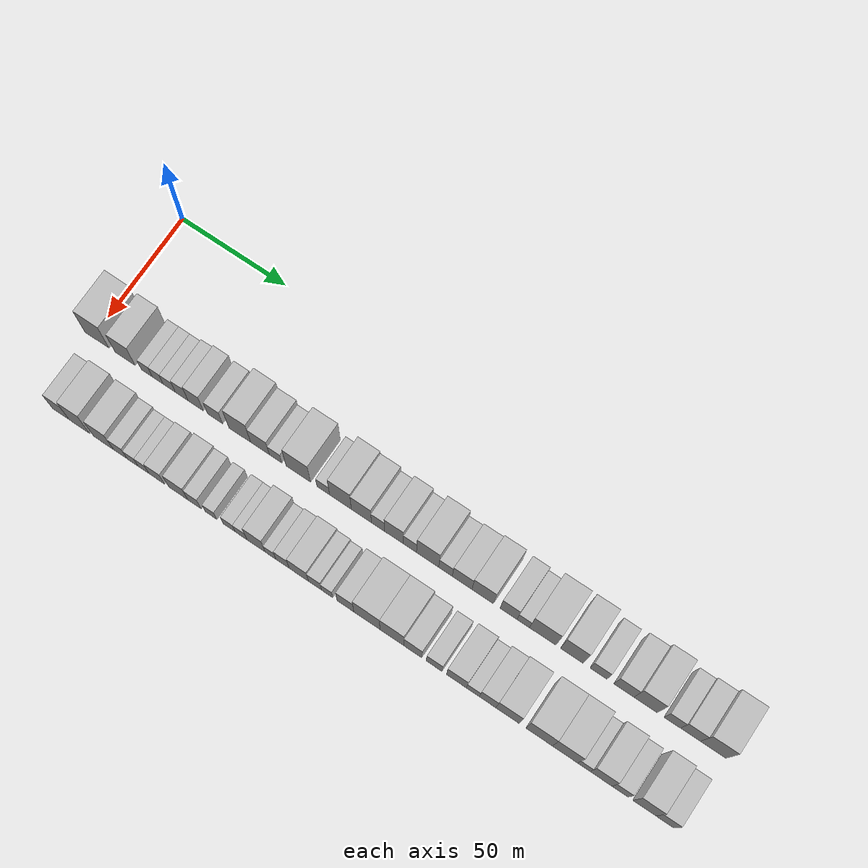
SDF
<sdf version="1.6">
 <world name="default">
  <model name="building_32">
   <static>1</static>
   <pose>50.0000 2.1094 0 0.000000 0.000000 0.000000</pose>
   <link name="link">
    <pose>0 0 12.00 0 0 0</pose>
    <collision name="collision"><geometry><box><size>20.0000 11.7132 24.0000</size></box></geometry></collision>
    <visual name="visual">
     <cast_shadows>0</cast_shadows>
     <geometry><box><size>20.0000 11.7132 24.0000</size></box></geometry>
     <material>
      <script>
       <uri>model://HANNAS_wall/materials/scripts</uri>
       <uri>model://HANNAS_wall/materials/textures</uri>
       <name>vrc/HANNAS_wall</name>
      </script>
     </material>
    </visual>
   </link>
  </model>
  <model name="building_33">
   <static>1</static>
   <pose>50.0000 15.8204 0 0.000000 0.000000 0.000000</pose>
   <link name="link">
    <pose>0 0 10.50 0 0 0</pose>
    <collision name="collision"><geometry><box><size>20.0000 9.7087 21.0000</size></box></geometry></collision>
    <visual name="visual">
     <cast_shadows>0</cast_shadows>
     <geometry><box><size>20.0000 9.7087 21.0000</size></box></geometry>
     <material>
      <script>
       <uri>model://HANNAS_wall/materials/scripts</uri>
       <uri>model://HANNAS_wall/materials/textures</uri>
       <name>vrc/HANNAS_wall</name>
      </script>
     </material>
    </visual>
   </link>
  </model>
  <model name="building_34">
   <static>1</static>
   <pose>50.0000 26.3142 0 0.000000 0.000000 0.000000</pose>
   <link name="link">
    <pose>0 0 6.00 0 0 0</pose>
    <collision name="collision"><geometry><box><size>20.0000 5.2790 12.0000</size></box></geometry></collision>
    <visual name="visual">
     <cast_shadows>0</cast_shadows>
     <geometry><box><size>20.0000 5.2790 12.0000</size></box></geometry>
     <material>
      <script>
       <uri>model://HANNAS_wall/materials/scripts</uri>
       <uri>model://HANNAS_wall/materials/textures</uri>
       <name>vrc/HANNAS_wall</name>
      </script>
     </material>
    </visual>
   </link>
  </model>
  <model name="building_35">
   <static>1</static>
   <pose>50.0000 31.6082 0 0.000000 0.000000 0.000000</pose>
   <link name="link">
    <pose>0 0 6.00 0 0 0</pose>
    <collision name="collision"><geometry><box><size>20.0000 5.3090 12.0000</size></box></geometry></collision>
    <visual name="visual">
     <cast_shadows>0</cast_shadows>
     <geometry><box><size>20.0000 5.3090 12.0000</size></box></geometry>
     <material>
      <script>
       <uri>model://HANNAS_wall/materials/scripts</uri>
       <uri>model://HANNAS_wall/materials/textures</uri>
       <name>vrc/HANNAS_wall</name>
      </script>
     </material>
    </visual>
   </link>
  </model>
  <model name="building_36">
   <static>1</static>
   <pose>50.0000 37.1352 0 0.000000 0.000000 0.000000</pose>
   <link name="link">
    <pose>0 0 6.00 0 0 0</pose>
    <collision name="collision"><geometry><box><size>20.0000 5.7449 12.0000</size></box></geometry></collision>
    <visual name="visual">
     <cast_shadows>0</cast_shadows>
     <geometry><box><size>20.0000 5.7449 12.0000</size></box></geometry>
     <material>
      <script>
       <uri>model://HANNAS_wall/materials/scripts</uri>
       <uri>model://HANNAS_wall/materials/textures</uri>
       <name>vrc/HANNAS_wall</name>
      </script>
     </material>
    </visual>
   </link>
  </model>
  <model name="building_37">
   <static>1</static>
   <pose>50.0000 43.0804 0 0.000000 0.000000 0.000000</pose>
   <link name="link">
    <pose>0 0 7.50 0 0 0</pose>
    <collision name="collision"><geometry><box><size>20.0000 6.1454 15.0000</size></box></geometry></collision>
    <visual name="visual">
     <cast_shadows>0</cast_shadows>
     <geometry><box><size>20.0000 6.1454 15.0000</size></box></geometry>
     <material>
      <script>
       <uri>model://HANNAS_wall/materials/scripts</uri>
       <uri>model://HANNAS_wall/materials/textures</uri>
       <name>vrc/HANNAS_wall</name>
      </script>
     </material>
    </visual>
   </link>
  </model>
  <model name="building_38">
   <static>1</static>
   <pose>50.0000 49.7688 0 0.000000 0.000000 0.000000</pose>
   <link name="link">
    <pose>0 0 9.00 0 0 0</pose>
    <collision name="collision"><geometry><box><size>20.0000 7.2315 18.0000</size></box></geometry></collision>
    <visual name="visual">
     <cast_shadows>0</cast_shadows>
     <geometry><box><size>20.0000 7.2315 18.0000</size></box></geometry>
     <material>
      <script>
       <uri>model://HANNAS_wall/materials/scripts</uri>
       <uri>model://HANNAS_wall/materials/textures</uri>
       <name>vrc/HANNAS_wall</name>
      </script>
     </material>
    </visual>
   </link>
  </model>
  <model name="building_39">
   <static>1</static>
   <pose>50.0000 58.9613 0 0.000000 0.000000 0.000000</pose>
   <link name="link">
    <pose>0 0 7.50 0 0 0</pose>
    <collision name="collision"><geometry><box><size>20.0000 7.1535 15.0000</size></box></geometry></collision>
    <visual name="visual">
     <cast_shadows>0</cast_shadows>
     <geometry><box><size>20.0000 7.1535 15.0000</size></box></geometry>
     <material>
      <script>
       <uri>model://HANNAS_wall/materials/scripts</uri>
       <uri>model://HANNAS_wall/materials/textures</uri>
       <name>vrc/HANNAS_wall</name>
      </script>
     </material>
    </visual>
   </link>
  </model>
  <model name="building_40">
   <static>1</static>
   <pose>50.0000 70.6889 0 0.000000 0.000000 0.000000</pose>
   <link name="link">
    <pose>0 0 12.00 0 0 0</pose>
    <collision name="collision"><geometry><box><size>20.0000 10.3017 24.0000</size></box></geometry></collision>
    <visual name="visual">
     <cast_shadows>0</cast_shadows>
     <geometry><box><size>20.0000 10.3017 24.0000</size></box></geometry>
     <material>
      <script>
       <uri>model://HANNAS_wall/materials/scripts</uri>
       <uri>model://HANNAS_wall/materials/textures</uri>
       <name>vrc/HANNAS_wall</name>
      </script>
     </material>
    </visual>
   </link>
  </model>
  <model name="building_41">
   <static>1</static>
   <pose>50.0000 80.2531 0 0.000000 0.000000 0.000000</pose>
   <link name="link">
    <pose>0 0 9.00 0 0 0</pose>
    <collision name="collision"><geometry><box><size>20.0000 8.8268 18.0000</size></box></geometry></collision>
    <visual name="visual">
     <cast_shadows>0</cast_shadows>
     <geometry><box><size>20.0000 8.8268 18.0000</size></box></geometry>
     <material>
      <script>
       <uri>model://HANNAS_wall/materials/scripts</uri>
       <uri>model://HANNAS_wall/materials/textures</uri>
       <name>vrc/HANNAS_wall</name>
      </script>
     </material>
    </visual>
   </link>
  </model>
  <model name="building_42">
   <static>1</static>
   <pose>50.0000 87.5807 0 0.000000 0.000000 0.000000</pose>
   <link name="link">
    <pose>0 0 6.00 0 0 0</pose>
    <collision name="collision"><geometry><box><size>20.0000 5.8285 12.0000</size></box></geometry></collision>
    <visual name="visual">
     <cast_shadows>0</cast_shadows>
     <geometry><box><size>20.0000 5.8285 12.0000</size></box></geometry>
     <material>
      <script>
       <uri>model://HANNAS_wall/materials/scripts</uri>
       <uri>model://HANNAS_wall/materials/textures</uri>
       <name>vrc/HANNAS_wall</name>
      </script>
     </material>
    </visual>
   </link>
  </model>
  <model name="building_43">
   <static>1</static>
   <pose>50.0000 98.2153 0 0.000000 0.000000 0.000000</pose>
   <link name="link">
    <pose>0 0 12.00 0 0 0</pose>
    <collision name="collision"><geometry><box><size>20.0000 11.4407 24.0000</size></box></geometry></collision>
    <visual name="visual">
     <cast_shadows>0</cast_shadows>
     <geometry><box><size>20.0000 11.4407 24.0000</size></box></geometry>
     <material>
      <script>
       <uri>model://HANNAS_wall/materials/scripts</uri>
       <uri>model://HANNAS_wall/materials/textures</uri>
       <name>vrc/HANNAS_wall</name>
      </script>
     </material>
    </visual>
   </link>
  </model>
  <model name="building_44">
   <static>1</static>
   <pose>50.0000 109.8829 0 0.000000 0.000000 0.000000</pose>
   <link name="link">
    <pose>0 0 6.00 0 0 0</pose>
    <collision name="collision"><geometry><box><size>20.0000 5.8946 12.0000</size></box></geometry></collision>
    <visual name="visual">
     <cast_shadows>0</cast_shadows>
     <geometry><box><size>20.0000 5.8946 12.0000</size></box></geometry>
     <material>
      <script>
       <uri>model://HANNAS_wall/materials/scripts</uri>
       <uri>model://HANNAS_wall/materials/textures</uri>
       <name>vrc/HANNAS_wall</name>
      </script>
     </material>
    </visual>
   </link>
  </model>
  <model name="building_45">
   <static>1</static>
   <pose>50.0000 117.8604 0 0.000000 0.000000 0.000000</pose>
   <link name="link">
    <pose>0 0 12.00 0 0 0</pose>
    <collision name="collision"><geometry><box><size>20.0000 10.0603 24.0000</size></box></geometry></collision>
    <visual name="visual">
     <cast_shadows>0</cast_shadows>
     <geometry><box><size>20.0000 10.0603 24.0000</size></box></geometry>
     <material>
      <script>
       <uri>model://HANNAS_wall/materials/scripts</uri>
       <uri>model://HANNAS_wall/materials/textures</uri>
       <name>vrc/HANNAS_wall</name>
      </script>
     </material>
    </visual>
   </link>
  </model>
  <model name="building_46">
   <static>1</static>
   <pose>50.0000 127.4935 0 0.000000 0.000000 0.000000</pose>
   <link name="link">
    <pose>0 0 10.50 0 0 0</pose>
    <collision name="collision"><geometry><box><size>20.0000 9.2059 21.0000</size></box></geometry></collision>
    <visual name="visual">
     <cast_shadows>0</cast_shadows>
     <geometry><box><size>20.0000 9.2059 21.0000</size></box></geometry>
     <material>
      <script>
       <uri>model://HANNAS_wall/materials/scripts</uri>
       <uri>model://HANNAS_wall/materials/textures</uri>
       <name>vrc/HANNAS_wall</name>
      </script>
     </material>
    </visual>
   </link>
  </model>
  <model name="building_47">
   <static>1</static>
   <pose>50.0000 135.1007 0 0.000000 0.000000 0.000000</pose>
   <link name="link">
    <pose>0 0 7.50 0 0 0</pose>
    <collision name="collision"><geometry><box><size>20.0000 6.0083 15.0000</size></box></geometry></collision>
    <visual name="visual">
     <cast_shadows>0</cast_shadows>
     <geometry><box><size>20.0000 6.0083 15.0000</size></box></geometry>
     <material>
      <script>
       <uri>model://HANNAS_wall/materials/scripts</uri>
       <uri>model://HANNAS_wall/materials/textures</uri>
       <name>vrc/HANNAS_wall</name>
      </script>
     </material>
    </visual>
   </link>
  </model>
  <model name="building_48">
   <static>1</static>
   <pose>50.0000 142.4231 0 0.000000 0.000000 0.000000</pose>
   <link name="link">
    <pose>0 0 10.50 0 0 0</pose>
    <collision name="collision"><geometry><box><size>20.0000 8.6366 21.0000</size></box></geometry></collision>
    <visual name="visual">
     <cast_shadows>0</cast_shadows>
     <geometry><box><size>20.0000 8.6366 21.0000</size></box></geometry>
     <material>
      <script>
       <uri>model://HANNAS_wall/materials/scripts</uri>
       <uri>model://HANNAS_wall/materials/textures</uri>
       <name>vrc/HANNAS_wall</name>
      </script>
     </material>
    </visual>
   </link>
  </model>
  <model name="building_49">
   <static>1</static>
   <pose>50.0000 149.7621 0 0.000000 0.000000 0.000000</pose>
   <link name="link">
    <pose>0 0 7.50 0 0 0</pose>
    <collision name="collision"><geometry><box><size>20.0000 6.0415 15.0000</size></box></geometry></collision>
    <visual name="visual">
     <cast_shadows>0</cast_shadows>
     <geometry><box><size>20.0000 6.0415 15.0000</size></box></geometry>
     <material>
      <script>
       <uri>model://HANNAS_wall/materials/scripts</uri>
       <uri>model://HANNAS_wall/materials/textures</uri>
       <name>vrc/HANNAS_wall</name>
      </script>
     </material>
    </visual>
   </link>
  </model>
  <model name="building_50">
   <static>1</static>
   <pose>50.0000 157.8326 0 0.000000 0.000000 0.000000</pose>
   <link name="link">
    <pose>0 0 12.00 0 0 0</pose>
    <collision name="collision"><geometry><box><size>20.0000 10.0995 24.0000</size></box></geometry></collision>
    <visual name="visual">
     <cast_shadows>0</cast_shadows>
     <geometry><box><size>20.0000 10.0995 24.0000</size></box></geometry>
     <material>
      <script>
       <uri>model://HANNAS_wall/materials/scripts</uri>
       <uri>model://HANNAS_wall/materials/textures</uri>
       <name>vrc/HANNAS_wall</name>
      </script>
     </material>
    </visual>
   </link>
  </model>
  <model name="building_51">
   <static>1</static>
   <pose>50.0000 165.9687 0 0.000000 0.000000 0.000000</pose>
   <link name="link">
    <pose>0 0 7.50 0 0 0</pose>
    <collision name="collision"><geometry><box><size>20.0000 6.1727 15.0000</size></box></geometry></collision>
    <visual name="visual">
     <cast_shadows>0</cast_shadows>
     <geometry><box><size>20.0000 6.1727 15.0000</size></box></geometry>
     <material>
      <script>
       <uri>model://HANNAS_wall/materials/scripts</uri>
       <uri>model://HANNAS_wall/materials/textures</uri>
       <name>vrc/HANNAS_wall</name>
      </script>
     </material>
    </visual>
   </link>
  </model>
  <model name="building_52">
   <static>1</static>
   <pose>50.0000 173.4965 0 0.000000 0.000000 0.000000</pose>
   <link name="link">
    <pose>0 0 9.00 0 0 0</pose>
    <collision name="collision"><geometry><box><size>20.0000 8.8830 18.0000</size></box></geometry></collision>
    <visual name="visual">
     <cast_shadows>0</cast_shadows>
     <geometry><box><size>20.0000 8.8830 18.0000</size></box></geometry>
     <material>
      <script>
       <uri>model://HANNAS_wall/materials/scripts</uri>
       <uri>model://HANNAS_wall/materials/textures</uri>
       <name>vrc/HANNAS_wall</name>
      </script>
     </material>
    </visual>
   </link>
  </model>
  <model name="building_53">
   <static>1</static>
   <pose>50.0000 182.7854 0 0.000000 0.000000 0.000000</pose>
   <link name="link">
    <pose>0 0 10.50 0 0 0</pose>
    <collision name="collision"><geometry><box><size>20.0000 9.6948 21.0000</size></box></geometry></collision>
    <visual name="visual">
     <cast_shadows>0</cast_shadows>
     <geometry><box><size>20.0000 9.6948 21.0000</size></box></geometry>
     <material>
      <script>
       <uri>model://HANNAS_wall/materials/scripts</uri>
       <uri>model://HANNAS_wall/materials/textures</uri>
       <name>vrc/HANNAS_wall</name>
      </script>
     </material>
    </visual>
   </link>
  </model>
  <model name="building_54">
   <static>1</static>
   <pose>50.0000 194.4416 0 0.000000 0.000000 0.000000</pose>
   <link name="link">
    <pose>0 0 9.00 0 0 0</pose>
    <collision name="collision"><geometry><box><size>20.0000 7.6175 18.0000</size></box></geometry></collision>
    <visual name="visual">
     <cast_shadows>0</cast_shadows>
     <geometry><box><size>20.0000 7.6175 18.0000</size></box></geometry>
     <material>
      <script>
       <uri>model://HANNAS_wall/materials/scripts</uri>
       <uri>model://HANNAS_wall/materials/textures</uri>
       <name>vrc/HANNAS_wall</name>
      </script>
     </material>
    </visual>
   </link>
  </model>
  <model name="building_55">
   <static>1</static>
   <pose>50.0000 201.0406 0 0.000000 0.000000 0.000000</pose>
   <link name="link">
    <pose>0 0 6.00 0 0 0</pose>
    <collision name="collision"><geometry><box><size>20.0000 5.5805 12.0000</size></box></geometry></collision>
    <visual name="visual">
     <cast_shadows>0</cast_shadows>
     <geometry><box><size>20.0000 5.5805 12.0000</size></box></geometry>
     <material>
      <script>
       <uri>model://HANNAS_wall/materials/scripts</uri>
       <uri>model://HANNAS_wall/materials/textures</uri>
       <name>vrc/HANNAS_wall</name>
      </script>
     </material>
    </visual>
   </link>
  </model>
  <model name="building_56">
   <static>1</static>
   <pose>50.0000 209.7148 0 0.000000 0.000000 0.000000</pose>
   <link name="link">
    <pose>0 0 12.00 0 0 0</pose>
    <collision name="collision"><geometry><box><size>20.0000 11.7679 24.0000</size></box></geometry></collision>
    <visual name="visual">
     <cast_shadows>0</cast_shadows>
     <geometry><box><size>20.0000 11.7679 24.0000</size></box></geometry>
     <material>
      <script>
       <uri>model://HANNAS_wall/materials/scripts</uri>
       <uri>model://HANNAS_wall/materials/textures</uri>
       <name>vrc/HANNAS_wall</name>
      </script>
     </material>
    </visual>
   </link>
  </model>
  <model name="building_57">
   <static>1</static>
   <pose>50.0000 222.6234 0 0.000000 0.000000 0.000000</pose>
   <link name="link">
    <pose>0 0 12.00 0 0 0</pose>
    <collision name="collision"><geometry><box><size>20.0000 10.0494 24.0000</size></box></geometry></collision>
    <visual name="visual">
     <cast_shadows>0</cast_shadows>
     <geometry><box><size>20.0000 10.0494 24.0000</size></box></geometry>
     <material>
      <script>
       <uri>model://HANNAS_wall/materials/scripts</uri>
       <uri>model://HANNAS_wall/materials/textures</uri>
       <name>vrc/HANNAS_wall</name>
      </script>
     </material>
    </visual>
   </link>
  </model>
  <model name="building_58">
   <static>1</static>
   <pose>50.0000 234.3908 0 0.000000 0.000000 0.000000</pose>
   <link name="link">
    <pose>0 0 7.50 0 0 0</pose>
    <collision name="collision"><geometry><box><size>20.0000 7.4855 15.0000</size></box></geometry></collision>
    <visual name="visual">
     <cast_shadows>0</cast_shadows>
     <geometry><box><size>20.0000 7.4855 15.0000</size></box></geometry>
     <material>
      <script>
       <uri>model://HANNAS_wall/materials/scripts</uri>
       <uri>model://HANNAS_wall/materials/textures</uri>
       <name>vrc/HANNAS_wall</name>
      </script>
     </material>
    </visual>
   </link>
  </model>
  <model name="building_59">
   <static>1</static>
   <pose>50.0000 245.5491 0 0.000000 0.000000 0.000000</pose>
   <link name="link">
    <pose>0 0 9.00 0 0 0</pose>
    <collision name="collision"><geometry><box><size>20.0000 8.8310 18.0000</size></box></geometry></collision>
    <visual name="visual">
     <cast_shadows>0</cast_shadows>
     <geometry><box><size>20.0000 8.8310 18.0000</size></box></geometry>
     <material>
      <script>
       <uri>model://HANNAS_wall/materials/scripts</uri>
       <uri>model://HANNAS_wall/materials/textures</uri>
       <name>vrc/HANNAS_wall</name>
      </script>
     </material>
    </visual>
   </link>
  </model>
  <model name="building_60">
   <static>1</static>
   <pose>50.0000 255.0190 0 0.000000 0.000000 0.000000</pose>
   <link name="link">
    <pose>0 0 12.00 0 0 0</pose>
    <collision name="collision"><geometry><box><size>20.0000 10.1087 24.0000</size></box></geometry></collision>
    <visual name="visual">
     <cast_shadows>0</cast_shadows>
     <geometry><box><size>20.0000 10.1087 24.0000</size></box></geometry>
     <material>
      <script>
       <uri>model://HANNAS_wall/materials/scripts</uri>
       <uri>model://HANNAS_wall/materials/textures</uri>
       <name>vrc/HANNAS_wall</name>
      </script>
     </material>
    </visual>
   </link>
  </model>
  <model name="building_61">
   <static>1</static>
   <pose>50.0000 266.5983 0 0.000000 0.000000 0.000000</pose>
   <link name="link">
    <pose>0 0 7.50 0 0 0</pose>
    <collision name="collision"><geometry><box><size>20.0000 7.0500 15.0000</size></box></geometry></collision>
    <visual name="visual">
     <cast_shadows>0</cast_shadows>
     <geometry><box><size>20.0000 7.0500 15.0000</size></box></geometry>
     <material>
      <script>
       <uri>model://HANNAS_wall/materials/scripts</uri>
       <uri>model://HANNAS_wall/materials/textures</uri>
       <name>vrc/HANNAS_wall</name>
      </script>
     </material>
    </visual>
   </link>
  </model>
  <model name="building_62">
   <static>1</static>
   <pose>50.0000 274.4224 0 0.000000 0.000000 0.000000</pose>
   <link name="link">
    <pose>0 0 9.00 0 0 0</pose>
    <collision name="collision"><geometry><box><size>20.0000 8.5982 18.0000</size></box></geometry></collision>
    <visual name="visual">
     <cast_shadows>0</cast_shadows>
     <geometry><box><size>20.0000 8.5982 18.0000</size></box></geometry>
     <material>
      <script>
       <uri>model://HANNAS_wall/materials/scripts</uri>
       <uri>model://HANNAS_wall/materials/textures</uri>
       <name>vrc/HANNAS_wall</name>
      </script>
     </material>
    </visual>
   </link>
  </model>
  <model name="building_63">
   <static>1</static>
   <pose>50.0000 284.2495 0 0.000000 0.000000 0.000000</pose>
   <link name="link">
    <pose>0 0 12.00 0 0 0</pose>
    <collision name="collision"><geometry><box><size>20.0000 11.0559 24.0000</size></box></geometry></collision>
    <visual name="visual">
     <cast_shadows>0</cast_shadows>
     <geometry><box><size>20.0000 11.0559 24.0000</size></box></geometry>
     <material>
      <script>
       <uri>model://HANNAS_wall/materials/scripts</uri>
       <uri>model://HANNAS_wall/materials/textures</uri>
       <name>vrc/HANNAS_wall</name>
      </script>
     </material>
    </visual>
   </link>
  </model>
  <model name="building_98">
   <static>1</static>
   <pose>82.0000 8.5804 0 0.000000 0.000000 0.000000</pose>
   <link name="link">
    <pose>0 0 9.00 0 0 0</pose>
    <collision name="collision"><geometry><box><size>20.0000 8.1538 18.0000</size></box></geometry></collision>
    <visual name="visual">
     <cast_shadows>0</cast_shadows>
     <geometry><box><size>20.0000 8.1538 18.0000</size></box></geometry>
     <material>
      <script>
       <uri>model://HANNAS_wall/materials/scripts</uri>
       <uri>model://HANNAS_wall/materials/textures</uri>
       <name>vrc/HANNAS_wall</name>
      </script>
     </material>
    </visual>
   </link>
  </model>
  <model name="building_99">
   <static>1</static>
   <pose>82.0000 17.5624 0 0.000000 0.000000 0.000000</pose>
   <link name="link">
    <pose>0 0 12.00 0 0 0</pose>
    <collision name="collision"><geometry><box><size>20.0000 9.8102 24.0000</size></box></geometry></collision>
    <visual name="visual">
     <cast_shadows>0</cast_shadows>
     <geometry><box><size>20.0000 9.8102 24.0000</size></box></geometry>
     <material>
      <script>
       <uri>model://HANNAS_wall/materials/scripts</uri>
       <uri>model://HANNAS_wall/materials/textures</uri>
       <name>vrc/HANNAS_wall</name>
      </script>
     </material>
    </visual>
   </link>
  </model>
  <model name="building_100">
   <static>1</static>
   <pose>82.0000 29.2115 0 0.000000 0.000000 0.000000</pose>
   <link name="link">
    <pose>0 0 10.50 0 0 0</pose>
    <collision name="collision"><geometry><box><size>20.0000 9.4880 21.0000</size></box></geometry></collision>
    <visual name="visual">
     <cast_shadows>0</cast_shadows>
     <geometry><box><size>20.0000 9.4880 21.0000</size></box></geometry>
     <material>
      <script>
       <uri>model://HANNAS_wall/materials/scripts</uri>
       <uri>model://HANNAS_wall/materials/textures</uri>
       <name>vrc/HANNAS_wall</name>
      </script>
     </material>
    </visual>
   </link>
  </model>
  <model name="building_101">
   <static>1</static>
   <pose>82.0000 37.2784 0 0.000000 0.000000 0.000000</pose>
   <link name="link">
    <pose>0 0 7.50 0 0 0</pose>
    <collision name="collision"><geometry><box><size>20.0000 6.6459 15.0000</size></box></geometry></collision>
    <visual name="visual">
     <cast_shadows>0</cast_shadows>
     <geometry><box><size>20.0000 6.6459 15.0000</size></box></geometry>
     <material>
      <script>
       <uri>model://HANNAS_wall/materials/scripts</uri>
       <uri>model://HANNAS_wall/materials/textures</uri>
       <name>vrc/HANNAS_wall</name>
      </script>
     </material>
    </visual>
   </link>
  </model>
  <model name="building_102">
   <static>1</static>
   <pose>82.0000 43.2062 0 0.000000 0.000000 0.000000</pose>
   <link name="link">
    <pose>0 0 6.00 0 0 0</pose>
    <collision name="collision"><geometry><box><size>20.0000 5.2098 12.0000</size></box></geometry></collision>
    <visual name="visual">
     <cast_shadows>0</cast_shadows>
     <geometry><box><size>20.0000 5.2098 12.0000</size></box></geometry>
     <material>
      <script>
       <uri>model://HANNAS_wall/materials/scripts</uri>
       <uri>model://HANNAS_wall/materials/textures</uri>
       <name>vrc/HANNAS_wall</name>
      </script>
     </material>
    </visual>
   </link>
  </model>
  <model name="building_103">
   <static>1</static>
   <pose>82.0000 48.4002 0 0.000000 0.000000 0.000000</pose>
   <link name="link">
    <pose>0 0 6.00 0 0 0</pose>
    <collision name="collision"><geometry><box><size>20.0000 5.1782 12.0000</size></box></geometry></collision>
    <visual name="visual">
     <cast_shadows>0</cast_shadows>
     <geometry><box><size>20.0000 5.1782 12.0000</size></box></geometry>
     <material>
      <script>
       <uri>model://HANNAS_wall/materials/scripts</uri>
       <uri>model://HANNAS_wall/materials/textures</uri>
       <name>vrc/HANNAS_wall</name>
      </script>
     </material>
    </visual>
   </link>
  </model>
  <model name="building_104">
   <static>1</static>
   <pose>82.0000 54.6306 0 0.000000 0.000000 0.000000</pose>
   <link name="link">
    <pose>0 0 7.50 0 0 0</pose>
    <collision name="collision"><geometry><box><size>20.0000 7.2825 15.0000</size></box></geometry></collision>
    <visual name="visual">
     <cast_shadows>0</cast_shadows>
     <geometry><box><size>20.0000 7.2825 15.0000</size></box></geometry>
     <material>
      <script>
       <uri>model://HANNAS_wall/materials/scripts</uri>
       <uri>model://HANNAS_wall/materials/textures</uri>
       <name>vrc/HANNAS_wall</name>
      </script>
     </material>
    </visual>
   </link>
  </model>
  <model name="building_105">
   <static>1</static>
   <pose>82.0000 64.7690 0 0.000000 0.000000 0.000000</pose>
   <link name="link">
    <pose>0 0 9.00 0 0 0</pose>
    <collision name="collision"><geometry><box><size>20.0000 8.9944 18.0000</size></box></geometry></collision>
    <visual name="visual">
     <cast_shadows>0</cast_shadows>
     <geometry><box><size>20.0000 8.9944 18.0000</size></box></geometry>
     <material>
      <script>
       <uri>model://HANNAS_wall/materials/scripts</uri>
       <uri>model://HANNAS_wall/materials/textures</uri>
       <name>vrc/HANNAS_wall</name>
      </script>
     </material>
    </visual>
   </link>
  </model>
  <model name="building_106">
   <static>1</static>
   <pose>82.0000 72.3655 0 0.000000 0.000000 0.000000</pose>
   <link name="link">
    <pose>0 0 7.50 0 0 0</pose>
    <collision name="collision"><geometry><box><size>20.0000 6.1985 15.0000</size></box></geometry></collision>
    <visual name="visual">
     <cast_shadows>0</cast_shadows>
     <geometry><box><size>20.0000 6.1985 15.0000</size></box></geometry>
     <material>
      <script>
       <uri>model://HANNAS_wall/materials/scripts</uri>
       <uri>model://HANNAS_wall/materials/textures</uri>
       <name>vrc/HANNAS_wall</name>
      </script>
     </material>
    </visual>
   </link>
  </model>
  <model name="building_107">
   <static>1</static>
   <pose>82.0000 80.1592 0 0.000000 0.000000 0.000000</pose>
   <link name="link">
    <pose>0 0 6.00 0 0 0</pose>
    <collision name="collision"><geometry><box><size>20.0000 5.3889 12.0000</size></box></geometry></collision>
    <visual name="visual">
     <cast_shadows>0</cast_shadows>
     <geometry><box><size>20.0000 5.3889 12.0000</size></box></geometry>
     <material>
      <script>
       <uri>model://HANNAS_wall/materials/scripts</uri>
       <uri>model://HANNAS_wall/materials/textures</uri>
       <name>vrc/HANNAS_wall</name>
      </script>
     </material>
    </visual>
   </link>
  </model>
  <model name="building_108">
   <static>1</static>
   <pose>82.0000 88.6038 0 0.000000 0.000000 0.000000</pose>
   <link name="link">
    <pose>0 0 6.00 0 0 0</pose>
    <collision name="collision"><geometry><box><size>20.0000 5.5002 12.0000</size></box></geometry></collision>
    <visual name="visual">
     <cast_shadows>0</cast_shadows>
     <geometry><box><size>20.0000 5.5002 12.0000</size></box></geometry>
     <material>
      <script>
       <uri>model://HANNAS_wall/materials/scripts</uri>
       <uri>model://HANNAS_wall/materials/textures</uri>
       <name>vrc/HANNAS_wall</name>
      </script>
     </material>
    </visual>
   </link>
  </model>
  <model name="building_109">
   <static>1</static>
   <pose>82.0000 94.1390 0 0.000000 0.000000 0.000000</pose>
   <link name="link">
    <pose>0 0 6.00 0 0 0</pose>
    <collision name="collision"><geometry><box><size>20.0000 5.5704 12.0000</size></box></geometry></collision>
    <visual name="visual">
     <cast_shadows>0</cast_shadows>
     <geometry><box><size>20.0000 5.5704 12.0000</size></box></geometry>
     <material>
      <script>
       <uri>model://HANNAS_wall/materials/scripts</uri>
       <uri>model://HANNAS_wall/materials/textures</uri>
       <name>vrc/HANNAS_wall</name>
      </script>
     </material>
    </visual>
   </link>
  </model>
  <model name="building_110">
   <static>1</static>
   <pose>82.0000 101.1667 0 0.000000 0.000000 0.000000</pose>
   <link name="link">
    <pose>0 0 10.50 0 0 0</pose>
    <collision name="collision"><geometry><box><size>20.0000 8.4850 21.0000</size></box></geometry></collision>
    <visual name="visual">
     <cast_shadows>0</cast_shadows>
     <geometry><box><size>20.0000 8.4850 21.0000</size></box></geometry>
     <material>
      <script>
       <uri>model://HANNAS_wall/materials/scripts</uri>
       <uri>model://HANNAS_wall/materials/textures</uri>
       <name>vrc/HANNAS_wall</name>
      </script>
     </material>
    </visual>
   </link>
  </model>
  <model name="building_111">
   <static>1</static>
   <pose>82.0000 107.8712 0 0.000000 0.000000 0.000000</pose>
   <link name="link">
    <pose>0 0 6.00 0 0 0</pose>
    <collision name="collision"><geometry><box><size>20.0000 4.9240 12.0000</size></box></geometry></collision>
    <visual name="visual">
     <cast_shadows>0</cast_shadows>
     <geometry><box><size>20.0000 4.9240 12.0000</size></box></geometry>
     <material>
      <script>
       <uri>model://HANNAS_wall/materials/scripts</uri>
       <uri>model://HANNAS_wall/materials/textures</uri>
       <name>vrc/HANNAS_wall</name>
      </script>
     </material>
    </visual>
   </link>
  </model>
  <model name="building_112">
   <static>1</static>
   <pose>82.0000 113.3877 0 0.000000 0.000000 0.000000</pose>
   <link name="link">
    <pose>0 0 7.50 0 0 0</pose>
    <collision name="collision"><geometry><box><size>20.0000 6.1090 15.0000</size></box></geometry></collision>
    <visual name="visual">
     <cast_shadows>0</cast_shadows>
     <geometry><box><size>20.0000 6.1090 15.0000</size></box></geometry>
     <material>
      <script>
       <uri>model://HANNAS_wall/materials/scripts</uri>
       <uri>model://HANNAS_wall/materials/textures</uri>
       <name>vrc/HANNAS_wall</name>
      </script>
     </material>
    </visual>
   </link>
  </model>
  <model name="building_113">
   <static>1</static>
   <pose>82.0000 120.8658 0 0.000000 0.000000 0.000000</pose>
   <link name="link">
    <pose>0 0 9.00 0 0 0</pose>
    <collision name="collision"><geometry><box><size>20.0000 8.8472 18.0000</size></box></geometry></collision>
    <visual name="visual">
     <cast_shadows>0</cast_shadows>
     <geometry><box><size>20.0000 8.8472 18.0000</size></box></geometry>
     <material>
      <script>
       <uri>model://HANNAS_wall/materials/scripts</uri>
       <uri>model://HANNAS_wall/materials/textures</uri>
       <name>vrc/HANNAS_wall</name>
      </script>
     </material>
    </visual>
   </link>
  </model>
  <model name="building_114">
   <static>1</static>
   <pose>82.0000 128.2970 0 0.000000 0.000000 0.000000</pose>
   <link name="link">
    <pose>0 0 7.50 0 0 0</pose>
    <collision name="collision"><geometry><box><size>20.0000 6.0151 15.0000</size></box></geometry></collision>
    <visual name="visual">
     <cast_shadows>0</cast_shadows>
     <geometry><box><size>20.0000 6.0151 15.0000</size></box></geometry>
     <material>
      <script>
       <uri>model://HANNAS_wall/materials/scripts</uri>
       <uri>model://HANNAS_wall/materials/textures</uri>
       <name>vrc/HANNAS_wall</name>
      </script>
     </material>
    </visual>
   </link>
  </model>
  <model name="building_115">
   <static>1</static>
   <pose>82.0000 133.8559 0 0.000000 0.000000 0.000000</pose>
   <link name="link">
    <pose>0 0 6.00 0 0 0</pose>
    <collision name="collision"><geometry><box><size>20.0000 5.1026 12.0000</size></box></geometry></collision>
    <visual name="visual">
     <cast_shadows>0</cast_shadows>
     <geometry><box><size>20.0000 5.1026 12.0000</size></box></geometry>
     <material>
      <script>
       <uri>model://HANNAS_wall/materials/scripts</uri>
       <uri>model://HANNAS_wall/materials/textures</uri>
       <name>vrc/HANNAS_wall</name>
      </script>
     </material>
    </visual>
   </link>
  </model>
  <model name="building_116">
   <static>1</static>
   <pose>82.0000 142.2069 0 0.000000 0.000000 0.000000</pose>
   <link name="link">
    <pose>0 0 9.00 0 0 0</pose>
    <collision name="collision"><geometry><box><size>20.0000 7.5994 18.0000</size></box></geometry></collision>
    <visual name="visual">
     <cast_shadows>0</cast_shadows>
     <geometry><box><size>20.0000 7.5994 18.0000</size></box></geometry>
     <material>
      <script>
       <uri>model://HANNAS_wall/materials/scripts</uri>
       <uri>model://HANNAS_wall/materials/textures</uri>
       <name>vrc/HANNAS_wall</name>
      </script>
     </material>
    </visual>
   </link>
  </model>
  <model name="building_117">
   <static>1</static>
   <pose>82.0000 151.9448 0 0.000000 0.000000 0.000000</pose>
   <link name="link">
    <pose>0 0 12.00 0 0 0</pose>
    <collision name="collision"><geometry><box><size>20.0000 11.8764 24.0000</size></box></geometry></collision>
    <visual name="visual">
     <cast_shadows>0</cast_shadows>
     <geometry><box><size>20.0000 11.8764 24.0000</size></box></geometry>
     <material>
      <script>
       <uri>model://HANNAS_wall/materials/scripts</uri>
       <uri>model://HANNAS_wall/materials/textures</uri>
       <name>vrc/HANNAS_wall</name>
      </script>
     </material>
    </visual>
   </link>
  </model>
  <model name="building_118">
   <static>1</static>
   <pose>82.0000 163.2398 0 0.000000 0.000000 0.000000</pose>
   <link name="link">
    <pose>0 0 12.00 0 0 0</pose>
    <collision name="collision"><geometry><box><size>20.0000 10.7136 24.0000</size></box></geometry></collision>
    <visual name="visual">
     <cast_shadows>0</cast_shadows>
     <geometry><box><size>20.0000 10.7136 24.0000</size></box></geometry>
     <material>
      <script>
       <uri>model://HANNAS_wall/materials/scripts</uri>
       <uri>model://HANNAS_wall/materials/textures</uri>
       <name>vrc/HANNAS_wall</name>
      </script>
     </material>
    </visual>
   </link>
  </model>
  <model name="building_119">
   <static>1</static>
   <pose>82.0000 172.6630 0 0.000000 0.000000 0.000000</pose>
   <link name="link">
    <pose>0 0 9.00 0 0 0</pose>
    <collision name="collision"><geometry><box><size>20.0000 8.1327 18.0000</size></box></geometry></collision>
    <visual name="visual">
     <cast_shadows>0</cast_shadows>
     <geometry><box><size>20.0000 8.1327 18.0000</size></box></geometry>
     <material>
      <script>
       <uri>model://HANNAS_wall/materials/scripts</uri>
       <uri>model://HANNAS_wall/materials/textures</uri>
       <name>vrc/HANNAS_wall</name>
      </script>
     </material>
    </visual>
   </link>
  </model>
  <model name="building_120">
   <static>1</static>
   <pose>82.0000 182.2499 0 0.000000 0.000000 0.000000</pose>
   <link name="link">
    <pose>0 0 7.50 0 0 0</pose>
    <collision name="collision"><geometry><box><size>20.0000 7.0410 15.0000</size></box></geometry></collision>
    <visual name="visual">
     <cast_shadows>0</cast_shadows>
     <geometry><box><size>20.0000 7.0410 15.0000</size></box></geometry>
     <material>
      <script>
       <uri>model://HANNAS_wall/materials/scripts</uri>
       <uri>model://HANNAS_wall/materials/textures</uri>
       <name>vrc/HANNAS_wall</name>
      </script>
     </material>
    </visual>
   </link>
  </model>
  <model name="building_121">
   <static>1</static>
   <pose>82.0000 192.2109 0 0.000000 0.000000 0.000000</pose>
   <link name="link">
    <pose>0 0 9.00 0 0 0</pose>
    <collision name="collision"><geometry><box><size>20.0000 8.8810 18.0000</size></box></geometry></collision>
    <visual name="visual">
     <cast_shadows>0</cast_shadows>
     <geometry><box><size>20.0000 8.8810 18.0000</size></box></geometry>
     <material>
      <script>
       <uri>model://HANNAS_wall/materials/scripts</uri>
       <uri>model://HANNAS_wall/materials/textures</uri>
       <name>vrc/HANNAS_wall</name>
      </script>
     </material>
    </visual>
   </link>
  </model>
  <model name="building_122">
   <static>1</static>
   <pose>82.0000 199.5385 0 0.000000 0.000000 0.000000</pose>
   <link name="link">
    <pose>0 0 6.00 0 0 0</pose>
    <collision name="collision"><geometry><box><size>20.0000 5.7742 12.0000</size></box></geometry></collision>
    <visual name="visual">
     <cast_shadows>0</cast_shadows>
     <geometry><box><size>20.0000 5.7742 12.0000</size></box></geometry>
     <material>
      <script>
       <uri>model://HANNAS_wall/materials/scripts</uri>
       <uri>model://HANNAS_wall/materials/textures</uri>
       <name>vrc/HANNAS_wall</name>
      </script>
     </material>
    </visual>
   </link>
  </model>
  <model name="building_123">
   <static>1</static>
   <pose>82.0000 206.1037 0 0.000000 0.000000 0.000000</pose>
   <link name="link">
    <pose>0 0 9.00 0 0 0</pose>
    <collision name="collision"><geometry><box><size>20.0000 7.3562 18.0000</size></box></geometry></collision>
    <visual name="visual">
     <cast_shadows>0</cast_shadows>
     <geometry><box><size>20.0000 7.3562 18.0000</size></box></geometry>
     <material>
      <script>
       <uri>model://HANNAS_wall/materials/scripts</uri>
       <uri>model://HANNAS_wall/materials/textures</uri>
       <name>vrc/HANNAS_wall</name>
      </script>
     </material>
    </visual>
   </link>
  </model>
  <model name="building_124">
   <static>1</static>
   <pose>82.0000 214.8905 0 0.000000 0.000000 0.000000</pose>
   <link name="link">
    <pose>0 0 10.50 0 0 0</pose>
    <collision name="collision"><geometry><box><size>20.0000 10.2174 21.0000</size></box></geometry></collision>
    <visual name="visual">
     <cast_shadows>0</cast_shadows>
     <geometry><box><size>20.0000 10.2174 21.0000</size></box></geometry>
     <material>
      <script>
       <uri>model://HANNAS_wall/materials/scripts</uri>
       <uri>model://HANNAS_wall/materials/textures</uri>
       <name>vrc/HANNAS_wall</name>
      </script>
     </material>
    </visual>
   </link>
  </model>
  <model name="building_125">
   <static>1</static>
   <pose>82.0000 228.7833 0 0.000000 0.000000 0.000000</pose>
   <link name="link">
    <pose>0 0 12.00 0 0 0</pose>
    <collision name="collision"><geometry><box><size>20.0000 11.5683 24.0000</size></box></geometry></collision>
    <visual name="visual">
     <cast_shadows>0</cast_shadows>
     <geometry><box><size>20.0000 11.5683 24.0000</size></box></geometry>
     <material>
      <script>
       <uri>model://HANNAS_wall/materials/scripts</uri>
       <uri>model://HANNAS_wall/materials/textures</uri>
       <name>vrc/HANNAS_wall</name>
      </script>
     </material>
    </visual>
   </link>
  </model>
  <model name="building_126">
   <static>1</static>
   <pose>82.0000 240.0758 0 0.000000 0.000000 0.000000</pose>
   <link name="link">
    <pose>0 0 12.00 0 0 0</pose>
    <collision name="collision"><geometry><box><size>20.0000 11.0169 24.0000</size></box></geometry></collision>
    <visual name="visual">
     <cast_shadows>0</cast_shadows>
     <geometry><box><size>20.0000 11.0169 24.0000</size></box></geometry>
     <material>
      <script>
       <uri>model://HANNAS_wall/materials/scripts</uri>
       <uri>model://HANNAS_wall/materials/textures</uri>
       <name>vrc/HANNAS_wall</name>
      </script>
     </material>
    </visual>
   </link>
  </model>
  <model name="building_127">
   <static>1</static>
   <pose>82.0000 248.2910 0 0.000000 0.000000 0.000000</pose>
   <link name="link">
    <pose>0 0 6.00 0 0 0</pose>
    <collision name="collision"><geometry><box><size>20.0000 5.4134 12.0000</size></box></geometry></collision>
    <visual name="visual">
     <cast_shadows>0</cast_shadows>
     <geometry><box><size>20.0000 5.4134 12.0000</size></box></geometry>
     <material>
      <script>
       <uri>model://HANNAS_wall/materials/scripts</uri>
       <uri>model://HANNAS_wall/materials/textures</uri>
       <name>vrc/HANNAS_wall</name>
      </script>
     </material>
    </visual>
   </link>
  </model>
  <model name="building_128">
   <static>1</static>
   <pose>82.0000 255.7228 0 0.000000 0.000000 0.000000</pose>
   <link name="link">
    <pose>0 0 10.50 0 0 0</pose>
    <collision name="collision"><geometry><box><size>20.0000 9.4501 21.0000</size></box></geometry></collision>
    <visual name="visual">
     <cast_shadows>0</cast_shadows>
     <geometry><box><size>20.0000 9.4501 21.0000</size></box></geometry>
     <material>
      <script>
       <uri>model://HANNAS_wall/materials/scripts</uri>
       <uri>model://HANNAS_wall/materials/textures</uri>
       <name>vrc/HANNAS_wall</name>
      </script>
     </material>
    </visual>
   </link>
  </model>
  <model name="building_129">
   <static>1</static>
   <pose>82.0000 263.9759 0 0.000000 0.000000 0.000000</pose>
   <link name="link">
    <pose>0 0 7.50 0 0 0</pose>
    <collision name="collision"><geometry><box><size>20.0000 7.0562 15.0000</size></box></geometry></collision>
    <visual name="visual">
     <cast_shadows>0</cast_shadows>
     <geometry><box><size>20.0000 7.0562 15.0000</size></box></geometry>
     <material>
      <script>
       <uri>model://HANNAS_wall/materials/scripts</uri>
       <uri>model://HANNAS_wall/materials/textures</uri>
       <name>vrc/HANNAS_wall</name>
      </script>
     </material>
    </visual>
   </link>
  </model>
  <model name="building_130">
   <static>1</static>
   <pose>82.0000 274.4285 0 0.000000 0.000000 0.000000</pose>
   <link name="link">
    <pose>0 0 12.00 0 0 0</pose>
    <collision name="collision"><geometry><box><size>20.0000 9.8490 24.0000</size></box></geometry></collision>
    <visual name="visual">
     <cast_shadows>0</cast_shadows>
     <geometry><box><size>20.0000 9.8490 24.0000</size></box></geometry>
     <material>
      <script>
       <uri>model://HANNAS_wall/materials/scripts</uri>
       <uri>model://HANNAS_wall/materials/textures</uri>
       <name>vrc/HANNAS_wall</name>
      </script>
     </material>
    </visual>
   </link>
  </model>
  <model name="building_131">
   <static>1</static>
   <pose>82.0000 283.2117 0 0.000000 0.000000 0.000000</pose>
   <link name="link">
    <pose>0 0 9.00 0 0 0</pose>
    <collision name="collision"><geometry><box><size>20.0000 7.7174 18.0000</size></box></geometry></collision>
    <visual name="visual">
     <cast_shadows>0</cast_shadows>
     <geometry><box><size>20.0000 7.7174 18.0000</size></box></geometry>
     <material>
      <script>
       <uri>model://HANNAS_wall/materials/scripts</uri>
       <uri>model://HANNAS_wall/materials/textures</uri>
       <name>vrc/HANNAS_wall</name>
      </script>
     </material>
    </visual>
   </link>
  </model>
 </world>
</sdf>
